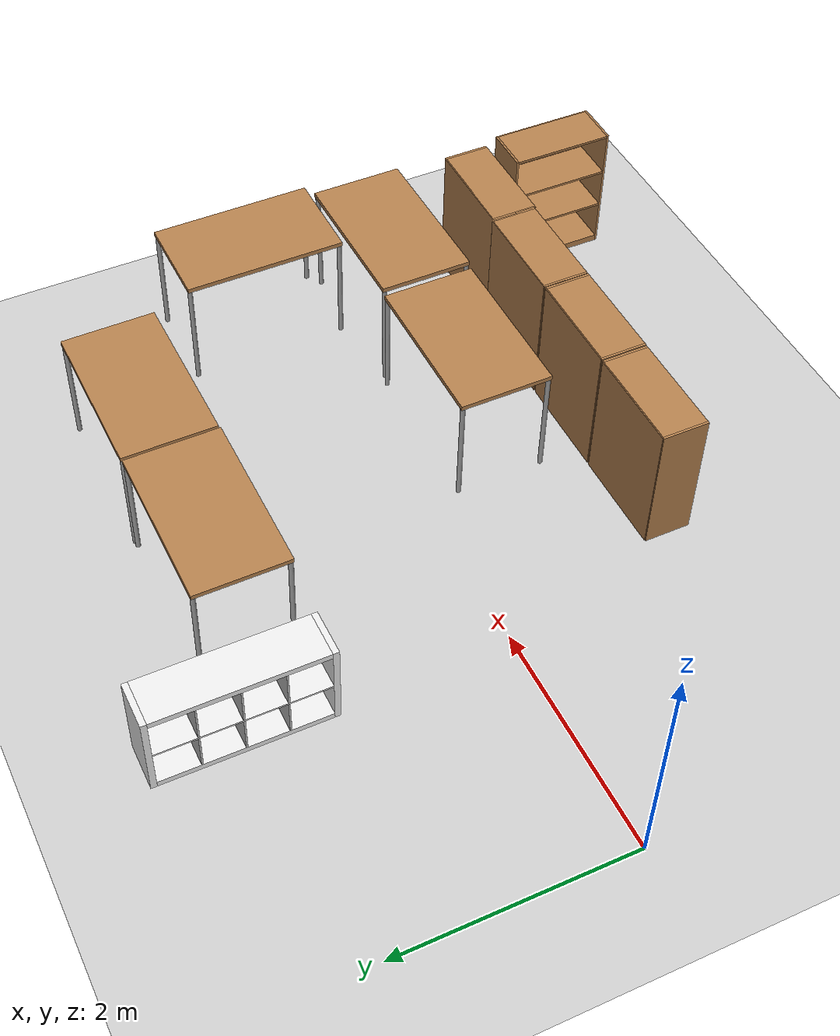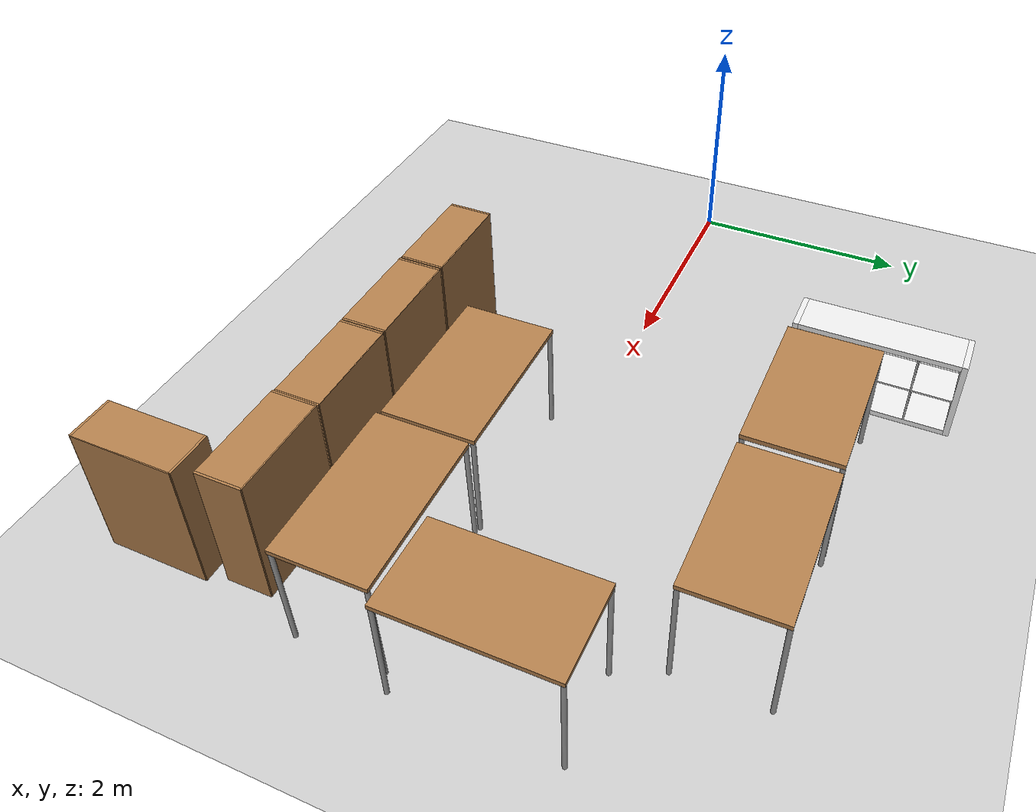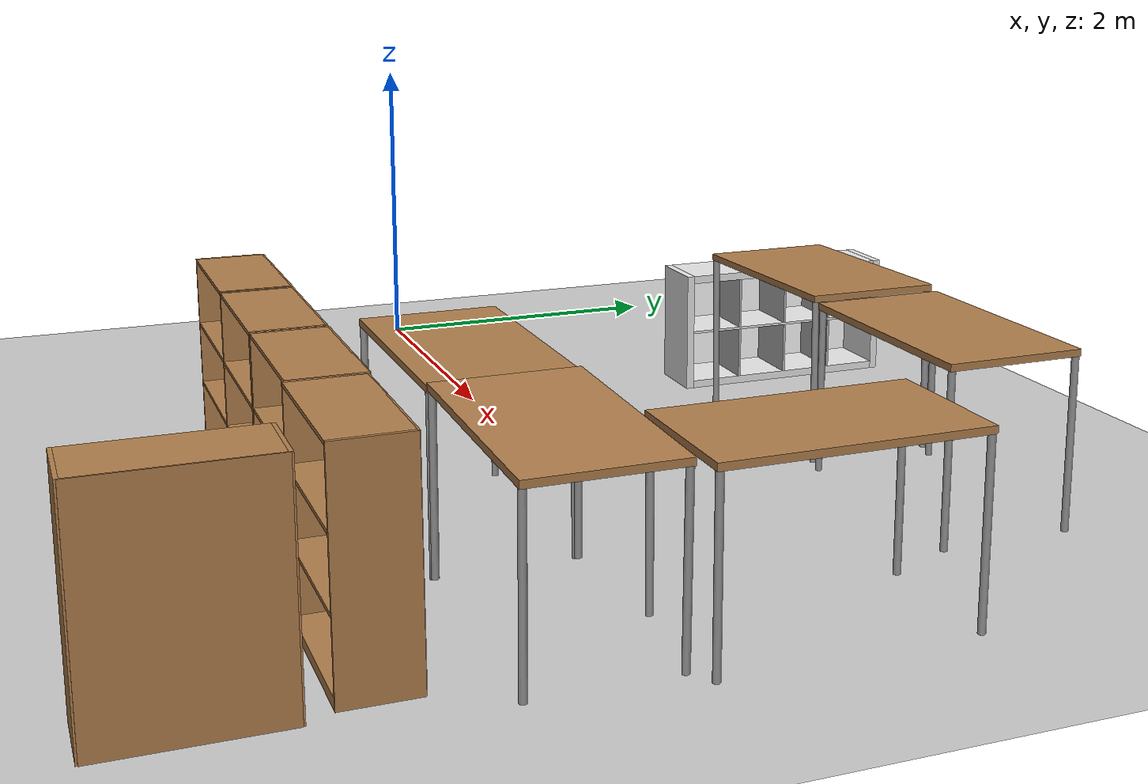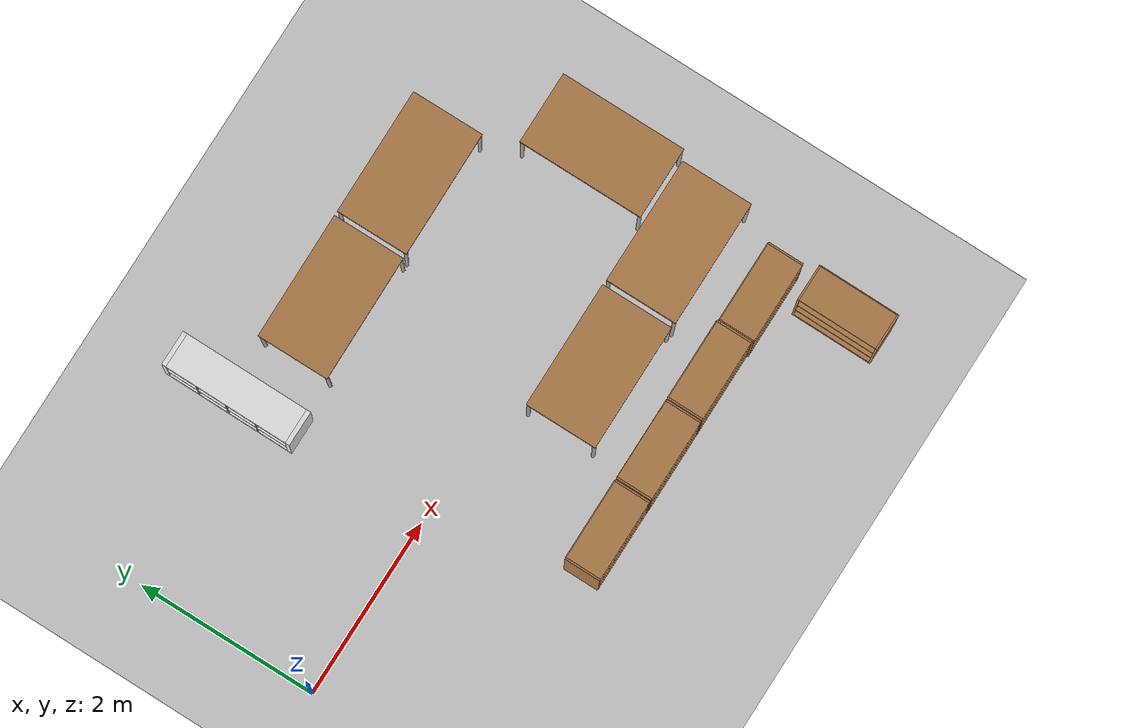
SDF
<sdf version="1.6">
 <world name="default">
  <model name="ground_plane">
   <static>1</static>
   <link name="link">
    <collision name="collision">
     <geometry><plane><normal>0 0 1</normal><size>100 100</size></plane></geometry>
     <surface><friction><ode><mu>100</mu><mu2>50</mu2></ode></friction></surface>
    </collision>
    <visual name="visual">
     <cast_shadows>0</cast_shadows>
     <geometry><plane><normal>0 0 1</normal><size>100 100</size></plane></geometry>
     <material>
      <script><uri>file://media/materials/scripts/gazebo.material</uri><name>Gazebo/Grey</name></script>
     </material>
    </visual>
   </link>
  </model>
  <model name="bookshelf_0">
   <static>1</static>
   <link name="link">
    <inertial><mass>1</mass></inertial>
    <collision name="back">
     <pose>0 0.005 0.6 0 -0 0</pose>
     <geometry><box><size>0.9 0.01 1.2</size></box></geometry>
    </collision>
    <visual name="visual1">
     <pose>0 0.005 0.6 0 -0 0</pose>
     <geometry><box><size>0.9 0.01 1.2</size></box></geometry>
     <material>
      <script><uri>file://media/materials/scripts/gazebo.material</uri><name>Gazebo/Wood</name></script>
     </material>
    </visual>
    <collision name="left_side">
     <pose>0.45 -0.195 0.6 0 -0 0</pose>
     <geometry><box><size>0.02 0.4 1.2</size></box></geometry>
    </collision>
    <visual name="visual2">
     <pose>0.45 -0.195 0.6 0 -0 0</pose>
     <geometry><box><size>0.02 0.4 1.2</size></box></geometry>
     <material>
      <script><uri>file://media/materials/scripts/gazebo.material</uri><name>Gazebo/Wood</name></script>
     </material>
    </visual>
    <collision name="right_side">
     <pose>-0.45 -0.195 0.6 0 -0 0</pose>
     <geometry><box><size>0.02 0.4 1.2</size></box></geometry>
    </collision>
    <visual name="visual3">
     <pose>-0.45 -0.195 0.6 0 -0 0</pose>
     <geometry><box><size>0.02 0.4 1.2</size></box></geometry>
     <material>
      <script><uri>file://media/materials/scripts/gazebo.material</uri><name>Gazebo/Wood</name></script>
     </material>
    </visual>
    <collision name="bottom">
     <pose>0 -0.195 0.03 0 -0 0</pose>
     <geometry><box><size>0.88 0.4 0.06</size></box></geometry>
    </collision>
    <visual name="visual4">
     <pose>0 -0.195 0.03 0 -0 0</pose>
     <geometry><box><size>0.88 0.4 0.06</size></box></geometry>
     <material>
      <script><uri>file://media/materials/scripts/gazebo.material</uri><name>Gazebo/Wood</name></script>
     </material>
    </visual>
    <collision name="top">
     <pose>0 -0.195 1.19 0 -0 0</pose>
     <geometry><box><size>0.88 0.4 0.02</size></box></geometry>
    </collision>
    <visual name="visual5">
     <pose>0 -0.195 1.19 0 -0 0</pose>
     <geometry><box><size>0.88 0.4 0.02</size></box></geometry>
     <material>
      <script><uri>file://media/materials/scripts/gazebo.material</uri><name>Gazebo/Wood</name></script>
     </material>
    </visual>
    <collision name="low_shelf">
     <pose>0 -0.195 0.43 0 -0 0</pose>
     <geometry><box><size>0.88 0.4 0.02</size></box></geometry>
    </collision>
    <visual name="visual6">
     <pose>0 -0.195 0.43 0 -0 0</pose>
     <geometry><box><size>0.88 0.4 0.02</size></box></geometry>
     <material>
      <script><uri>file://media/materials/scripts/gazebo.material</uri><name>Gazebo/Wood</name></script>
     </material>
    </visual>
    <collision name="high_shelf">
     <pose>0 -0.195 0.8 0 -0 0</pose>
     <geometry><box><size>0.88 0.4 0.02</size></box></geometry>
    </collision>
    <visual name="visual7">
     <pose>0 -0.195 0.8 0 -0 0</pose>
     <geometry><box><size>0.88 0.4 0.02</size></box></geometry>
     <material>
      <script><uri>file://media/materials/scripts/gazebo.material</uri><name>Gazebo/Wood</name></script>
     </material>
    </visual>
   </link>
   <pose>5.60698 -1.45081 0 0 -0 0</pose>
  </model>
  <model name="bookshelf_0_clone">
   <static>1</static>
   <link name="link">
    <inertial><mass>1</mass></inertial>
    <collision name="back">
     <pose>0 0.005 0.6 0 -0 0</pose>
     <geometry><box><size>0.9 0.01 1.2</size></box></geometry>
    </collision>
    <visual name="visual1">
     <pose>0 0.005 0.6 0 -0 0</pose>
     <geometry><box><size>0.9 0.01 1.2</size></box></geometry>
     <material>
      <script><uri>file://media/materials/scripts/gazebo.material</uri><name>Gazebo/Wood</name></script>
     </material>
    </visual>
    <collision name="left_side">
     <pose>0.45 -0.195 0.6 0 -0 0</pose>
     <geometry><box><size>0.02 0.4 1.2</size></box></geometry>
    </collision>
    <visual name="visual2">
     <pose>0.45 -0.195 0.6 0 -0 0</pose>
     <geometry><box><size>0.02 0.4 1.2</size></box></geometry>
     <material>
      <script><uri>file://media/materials/scripts/gazebo.material</uri><name>Gazebo/Wood</name></script>
     </material>
    </visual>
    <collision name="right_side">
     <pose>-0.45 -0.195 0.6 0 -0 0</pose>
     <geometry><box><size>0.02 0.4 1.2</size></box></geometry>
    </collision>
    <visual name="visual3">
     <pose>-0.45 -0.195 0.6 0 -0 0</pose>
     <geometry><box><size>0.02 0.4 1.2</size></box></geometry>
     <material>
      <script><uri>file://media/materials/scripts/gazebo.material</uri><name>Gazebo/Wood</name></script>
     </material>
    </visual>
    <collision name="bottom">
     <pose>0 -0.195 0.03 0 -0 0</pose>
     <geometry><box><size>0.88 0.4 0.06</size></box></geometry>
    </collision>
    <visual name="visual4">
     <pose>0 -0.195 0.03 0 -0 0</pose>
     <geometry><box><size>0.88 0.4 0.06</size></box></geometry>
     <material>
      <script><uri>file://media/materials/scripts/gazebo.material</uri><name>Gazebo/Wood</name></script>
     </material>
    </visual>
    <collision name="top">
     <pose>0 -0.195 1.19 0 -0 0</pose>
     <geometry><box><size>0.88 0.4 0.02</size></box></geometry>
    </collision>
    <visual name="visual5">
     <pose>0 -0.195 1.19 0 -0 0</pose>
     <geometry><box><size>0.88 0.4 0.02</size></box></geometry>
     <material>
      <script><uri>file://media/materials/scripts/gazebo.material</uri><name>Gazebo/Wood</name></script>
     </material>
    </visual>
    <collision name="low_shelf">
     <pose>0 -0.195 0.43 0 -0 0</pose>
     <geometry><box><size>0.88 0.4 0.02</size></box></geometry>
    </collision>
    <visual name="visual6">
     <pose>0 -0.195 0.43 0 -0 0</pose>
     <geometry><box><size>0.88 0.4 0.02</size></box></geometry>
     <material>
      <script><uri>file://media/materials/scripts/gazebo.material</uri><name>Gazebo/Wood</name></script>
     </material>
    </visual>
    <collision name="high_shelf">
     <pose>0 -0.195 0.8 0 -0 0</pose>
     <geometry><box><size>0.88 0.4 0.02</size></box></geometry>
    </collision>
    <visual name="visual7">
     <pose>0 -0.195 0.8 0 -0 0</pose>
     <geometry><box><size>0.88 0.4 0.02</size></box></geometry>
     <material>
      <script><uri>file://media/materials/scripts/gazebo.material</uri><name>Gazebo/Wood</name></script>
     </material>
    </visual>
   </link>
   <pose>4.69369 -1.43695 0 0 -0 0</pose>
  </model>
  <model name="bookshelf_0_clone_0">
   <static>1</static>
   <link name="link">
    <inertial><mass>1</mass></inertial>
    <collision name="back">
     <pose>0 0.005 0.6 0 -0 0</pose>
     <geometry><box><size>0.9 0.01 1.2</size></box></geometry>
    </collision>
    <visual name="visual1">
     <pose>0 0.005 0.6 0 -0 0</pose>
     <geometry><box><size>0.9 0.01 1.2</size></box></geometry>
     <material>
      <script><uri>file://media/materials/scripts/gazebo.material</uri><name>Gazebo/Wood</name></script>
     </material>
    </visual>
    <collision name="left_side">
     <pose>0.45 -0.195 0.6 0 -0 0</pose>
     <geometry><box><size>0.02 0.4 1.2</size></box></geometry>
    </collision>
    <visual name="visual2">
     <pose>0.45 -0.195 0.6 0 -0 0</pose>
     <geometry><box><size>0.02 0.4 1.2</size></box></geometry>
     <material>
      <script><uri>file://media/materials/scripts/gazebo.material</uri><name>Gazebo/Wood</name></script>
     </material>
    </visual>
    <collision name="right_side">
     <pose>-0.45 -0.195 0.6 0 -0 0</pose>
     <geometry><box><size>0.02 0.4 1.2</size></box></geometry>
    </collision>
    <visual name="visual3">
     <pose>-0.45 -0.195 0.6 0 -0 0</pose>
     <geometry><box><size>0.02 0.4 1.2</size></box></geometry>
     <material>
      <script><uri>file://media/materials/scripts/gazebo.material</uri><name>Gazebo/Wood</name></script>
     </material>
    </visual>
    <collision name="bottom">
     <pose>0 -0.195 0.03 0 -0 0</pose>
     <geometry><box><size>0.88 0.4 0.06</size></box></geometry>
    </collision>
    <visual name="visual4">
     <pose>0 -0.195 0.03 0 -0 0</pose>
     <geometry><box><size>0.88 0.4 0.06</size></box></geometry>
     <material>
      <script><uri>file://media/materials/scripts/gazebo.material</uri><name>Gazebo/Wood</name></script>
     </material>
    </visual>
    <collision name="top">
     <pose>0 -0.195 1.19 0 -0 0</pose>
     <geometry><box><size>0.88 0.4 0.02</size></box></geometry>
    </collision>
    <visual name="visual5">
     <pose>0 -0.195 1.19 0 -0 0</pose>
     <geometry><box><size>0.88 0.4 0.02</size></box></geometry>
     <material>
      <script><uri>file://media/materials/scripts/gazebo.material</uri><name>Gazebo/Wood</name></script>
     </material>
    </visual>
    <collision name="low_shelf">
     <pose>0 -0.195 0.43 0 -0 0</pose>
     <geometry><box><size>0.88 0.4 0.02</size></box></geometry>
    </collision>
    <visual name="visual6">
     <pose>0 -0.195 0.43 0 -0 0</pose>
     <geometry><box><size>0.88 0.4 0.02</size></box></geometry>
     <material>
      <script><uri>file://media/materials/scripts/gazebo.material</uri><name>Gazebo/Wood</name></script>
     </material>
    </visual>
    <collision name="high_shelf">
     <pose>0 -0.195 0.8 0 -0 0</pose>
     <geometry><box><size>0.88 0.4 0.02</size></box></geometry>
    </collision>
    <visual name="visual7">
     <pose>0 -0.195 0.8 0 -0 0</pose>
     <geometry><box><size>0.88 0.4 0.02</size></box></geometry>
     <material>
      <script><uri>file://media/materials/scripts/gazebo.material</uri><name>Gazebo/Wood</name></script>
     </material>
    </visual>
   </link>
   <pose>3.76739 -1.438 0 0 -0 0</pose>
  </model>
  <model name="bookshelf_0_clone_1">
   <static>1</static>
   <link name="link">
    <inertial><mass>1</mass></inertial>
    <collision name="back">
     <pose>0 0.005 0.6 0 -0 0</pose>
     <geometry><box><size>0.9 0.01 1.2</size></box></geometry>
    </collision>
    <visual name="visual1">
     <pose>0 0.005 0.6 0 -0 0</pose>
     <geometry><box><size>0.9 0.01 1.2</size></box></geometry>
     <material>
      <script><uri>file://media/materials/scripts/gazebo.material</uri><name>Gazebo/Wood</name></script>
     </material>
    </visual>
    <collision name="left_side">
     <pose>0.45 -0.195 0.6 0 -0 0</pose>
     <geometry><box><size>0.02 0.4 1.2</size></box></geometry>
    </collision>
    <visual name="visual2">
     <pose>0.45 -0.195 0.6 0 -0 0</pose>
     <geometry><box><size>0.02 0.4 1.2</size></box></geometry>
     <material>
      <script><uri>file://media/materials/scripts/gazebo.material</uri><name>Gazebo/Wood</name></script>
     </material>
    </visual>
    <collision name="right_side">
     <pose>-0.45 -0.195 0.6 0 -0 0</pose>
     <geometry><box><size>0.02 0.4 1.2</size></box></geometry>
    </collision>
    <visual name="visual3">
     <pose>-0.45 -0.195 0.6 0 -0 0</pose>
     <geometry><box><size>0.02 0.4 1.2</size></box></geometry>
     <material>
      <script><uri>file://media/materials/scripts/gazebo.material</uri><name>Gazebo/Wood</name></script>
     </material>
    </visual>
    <collision name="bottom">
     <pose>0 -0.195 0.03 0 -0 0</pose>
     <geometry><box><size>0.88 0.4 0.06</size></box></geometry>
    </collision>
    <visual name="visual4">
     <pose>0 -0.195 0.03 0 -0 0</pose>
     <geometry><box><size>0.88 0.4 0.06</size></box></geometry>
     <material>
      <script><uri>file://media/materials/scripts/gazebo.material</uri><name>Gazebo/Wood</name></script>
     </material>
    </visual>
    <collision name="top">
     <pose>0 -0.195 1.19 0 -0 0</pose>
     <geometry><box><size>0.88 0.4 0.02</size></box></geometry>
    </collision>
    <visual name="visual5">
     <pose>0 -0.195 1.19 0 -0 0</pose>
     <geometry><box><size>0.88 0.4 0.02</size></box></geometry>
     <material>
      <script><uri>file://media/materials/scripts/gazebo.material</uri><name>Gazebo/Wood</name></script>
     </material>
    </visual>
    <collision name="low_shelf">
     <pose>0 -0.195 0.43 0 -0 0</pose>
     <geometry><box><size>0.88 0.4 0.02</size></box></geometry>
    </collision>
    <visual name="visual6">
     <pose>0 -0.195 0.43 0 -0 0</pose>
     <geometry><box><size>0.88 0.4 0.02</size></box></geometry>
     <material>
      <script><uri>file://media/materials/scripts/gazebo.material</uri><name>Gazebo/Wood</name></script>
     </material>
    </visual>
    <collision name="high_shelf">
     <pose>0 -0.195 0.8 0 -0 0</pose>
     <geometry><box><size>0.88 0.4 0.02</size></box></geometry>
    </collision>
    <visual name="visual7">
     <pose>0 -0.195 0.8 0 -0 0</pose>
     <geometry><box><size>0.88 0.4 0.02</size></box></geometry>
     <material>
      <script><uri>file://media/materials/scripts/gazebo.material</uri><name>Gazebo/Wood</name></script>
     </material>
    </visual>
   </link>
   <pose>2.83762 -1.43529 0 0 -0 0</pose>
  </model>
  <model name="bookshelf_sidepose_clone_4">
   <link name="link">
    <pose>0.214811 -0.123316 0 0 0 -1.57547</pose>
    <inertial><mass>1</mass></inertial>
    <visual name="visual1">
     <pose>0 0.005 0.6 0 -0 0</pose>
     <geometry><box><size>0.9 0.01 1.2</size></box></geometry>
     <material>
      <script><uri>file://media/materials/scripts/gazebo.material</uri><name>Gazebo/Wood</name></script>
      <ambient>1 1 1 1</ambient>
      <diffuse>1 1 1 1</diffuse>
      <specular>0.2 0.2 0.2 1</specular>
      <emissive>0 0 0 1</emissive>
     </material>
    </visual>
    <visual name="visual2">
     <pose>0.45 -0.195 0.6 0 -0 0</pose>
     <geometry><box><size>0.02 0.4 1.2</size></box></geometry>
     <material>
      <script><uri>file://media/materials/scripts/gazebo.material</uri><name>Gazebo/Wood</name></script>
      <ambient>1 1 1 1</ambient>
      <diffuse>1 1 1 1</diffuse>
      <specular>0.2 0.2 0.2 1</specular>
      <emissive>0 0 0 1</emissive>
     </material>
    </visual>
    <visual name="visual3">
     <pose>-0.45 -0.195 0.6 0 -0 0</pose>
     <geometry><box><size>0.02 0.4 1.2</size></box></geometry>
     <material>
      <script><uri>file://media/materials/scripts/gazebo.material</uri><name>Gazebo/Wood</name></script>
      <ambient>1 1 1 1</ambient>
      <diffuse>1 1 1 1</diffuse>
      <specular>0.2 0.2 0.2 1</specular>
      <emissive>0 0 0 1</emissive>
     </material>
    </visual>
    <visual name="visual4">
     <pose>0 -0.195 0.03 0 -0 0</pose>
     <geometry><box><size>0.88 0.4 0.06</size></box></geometry>
     <material>
      <script><uri>file://media/materials/scripts/gazebo.material</uri><name>Gazebo/Wood</name></script>
      <ambient>1 1 1 1</ambient>
      <diffuse>1 1 1 1</diffuse>
      <specular>0.2 0.2 0.2 1</specular>
      <emissive>0 0 0 1</emissive>
     </material>
    </visual>
    <visual name="visual6">
     <pose>0 -0.195 0.43 0 -0 0</pose>
     <geometry><box><size>0.88 0.4 0.02</size></box></geometry>
     <material>
      <script><uri>file://media/materials/scripts/gazebo.material</uri><name>Gazebo/Wood</name></script>
      <ambient>1 1 1 1</ambient>
      <diffuse>1 1 1 1</diffuse>
      <specular>0.2 0.2 0.2 1</specular>
      <emissive>0 0 0 1</emissive>
     </material>
    </visual>
    <visual name="visual5">
     <pose>0 -0.195 1.19 0 -0 0</pose>
     <geometry><box><size>0.88 0.4 0.02</size></box></geometry>
     <material>
      <script><uri>file://media/materials/scripts/gazebo.material</uri><name>Gazebo/Wood</name></script>
      <ambient>1 1 1 1</ambient>
      <diffuse>1 1 1 1</diffuse>
      <specular>0.2 0.2 0.2 1</specular>
      <emissive>0 0 0 1</emissive>
     </material>
    </visual>
    <visual name="visual7">
     <pose>0 -0.195 0.8 0 -0 0</pose>
     <geometry><box><size>0.88 0.4 0.02</size></box></geometry>
     <material>
      <script><uri>file://media/materials/scripts/gazebo.material</uri><name>Gazebo/Wood</name></script>
      <ambient>1 1 1 1</ambient>
      <diffuse>1 1 1 1</diffuse>
      <specular>0.2 0.2 0.2 1</specular>
      <emissive>0 0 0 1</emissive>
     </material>
    </visual>
    <collision name="back">
     <pose>0 0.005 0.6 0 -0 0</pose>
     <geometry><box><size>0.9 0.01 1.2</size></box></geometry>
     <surface>
      <friction>
       <ode><mu>1</mu><mu2>1</mu2><fdir1>0 0 0</fdir1><slip1>0</slip1><slip2>0</slip2></ode>
       <torsional>
        <coefficient>1</coefficient>
        <patch_radius>0</patch_radius>
        <surface_radius>0</surface_radius>
        <use_patch_radius>1</use_patch_radius>
        <ode><slip>0</slip></ode>
       </torsional>
      </friction>
      <bounce><restitution_coefficient>0</restitution_coefficient><threshold>1e+06</threshold></bounce>
      <contact>
       <collide_without_contact>0</collide_without_contact>
       <collide_without_contact_bitmask>1</collide_without_contact_bitmask>
       <collide_bitmask>1</collide_bitmask>
       <ode>
        <soft_cfm>0</soft_cfm>
        <soft_erp>0.2</soft_erp>
        <kp>1e+13</kp>
        <kd>1</kd>
        <max_vel>0.01</max_vel>
        <min_depth>0</min_depth>
       </ode>
       <bullet>
        <split_impulse>1</split_impulse>
        <split_impulse_penetration_threshold>-0.01</split_impulse_penetration_threshold>
        <soft_cfm>0</soft_cfm>
        <soft_erp>0.2</soft_erp>
        <kp>1e+13</kp>
        <kd>1</kd>
       </bullet>
      </contact>
     </surface>
    </collision>
    <collision name="left_side">
     <pose>0.45 -0.195 0.6 0 -0 0</pose>
     <geometry><box><size>0.02 0.4 1.2</size></box></geometry>
     <surface>
      <friction>
       <ode><mu>1</mu><mu2>1</mu2><fdir1>0 0 0</fdir1><slip1>0</slip1><slip2>0</slip2></ode>
       <torsional>
        <coefficient>1</coefficient>
        <patch_radius>0</patch_radius>
        <surface_radius>0</surface_radius>
        <use_patch_radius>1</use_patch_radius>
        <ode><slip>0</slip></ode>
       </torsional>
      </friction>
      <bounce><restitution_coefficient>0</restitution_coefficient><threshold>1e+06</threshold></bounce>
      <contact>
       <collide_without_contact>0</collide_without_contact>
       <collide_without_contact_bitmask>1</collide_without_contact_bitmask>
       <collide_bitmask>1</collide_bitmask>
       <ode>
        <soft_cfm>0</soft_cfm>
        <soft_erp>0.2</soft_erp>
        <kp>1e+13</kp>
        <kd>1</kd>
        <max_vel>0.01</max_vel>
        <min_depth>0</min_depth>
       </ode>
       <bullet>
        <split_impulse>1</split_impulse>
        <split_impulse_penetration_threshold>-0.01</split_impulse_penetration_threshold>
        <soft_cfm>0</soft_cfm>
        <soft_erp>0.2</soft_erp>
        <kp>1e+13</kp>
        <kd>1</kd>
       </bullet>
      </contact>
     </surface>
    </collision>
    <collision name="right_side">
     <pose>-0.45 -0.195 0.6 0 -0 0</pose>
     <geometry><box><size>0.02 0.4 1.2</size></box></geometry>
     <surface>
      <friction>
       <ode><mu>1</mu><mu2>1</mu2><fdir1>0 0 0</fdir1><slip1>0</slip1><slip2>0</slip2></ode>
       <torsional>
        <coefficient>1</coefficient>
        <patch_radius>0</patch_radius>
        <surface_radius>0</surface_radius>
        <use_patch_radius>1</use_patch_radius>
        <ode><slip>0</slip></ode>
       </torsional>
      </friction>
      <bounce><restitution_coefficient>0</restitution_coefficient><threshold>1e+06</threshold></bounce>
      <contact>
       <collide_without_contact>0</collide_without_contact>
       <collide_without_contact_bitmask>1</collide_without_contact_bitmask>
       <collide_bitmask>1</collide_bitmask>
       <ode>
        <soft_cfm>0</soft_cfm>
        <soft_erp>0.2</soft_erp>
        <kp>1e+13</kp>
        <kd>1</kd>
        <max_vel>0.01</max_vel>
        <min_depth>0</min_depth>
       </ode>
       <bullet>
        <split_impulse>1</split_impulse>
        <split_impulse_penetration_threshold>-0.01</split_impulse_penetration_threshold>
        <soft_cfm>0</soft_cfm>
        <soft_erp>0.2</soft_erp>
        <kp>1e+13</kp>
        <kd>1</kd>
       </bullet>
      </contact>
     </surface>
    </collision>
    <collision name="bottom">
     <pose>0 -0.195 0.03 0 -0 0</pose>
     <geometry><box><size>0.88 0.4 0.06</size></box></geometry>
     <surface>
      <friction>
       <ode><mu>1</mu><mu2>1</mu2><fdir1>0 0 0</fdir1><slip1>0</slip1><slip2>0</slip2></ode>
       <torsional>
        <coefficient>1</coefficient>
        <patch_radius>0</patch_radius>
        <surface_radius>0</surface_radius>
        <use_patch_radius>1</use_patch_radius>
        <ode><slip>0</slip></ode>
       </torsional>
      </friction>
      <bounce><restitution_coefficient>0</restitution_coefficient><threshold>1e+06</threshold></bounce>
      <contact>
       <collide_without_contact>0</collide_without_contact>
       <collide_without_contact_bitmask>1</collide_without_contact_bitmask>
       <collide_bitmask>1</collide_bitmask>
       <ode>
        <soft_cfm>0</soft_cfm>
        <soft_erp>0.2</soft_erp>
        <kp>1e+13</kp>
        <kd>1</kd>
        <max_vel>0.01</max_vel>
        <min_depth>0</min_depth>
       </ode>
       <bullet>
        <split_impulse>1</split_impulse>
        <split_impulse_penetration_threshold>-0.01</split_impulse_penetration_threshold>
        <soft_cfm>0</soft_cfm>
        <soft_erp>0.2</soft_erp>
        <kp>1e+13</kp>
        <kd>1</kd>
       </bullet>
      </contact>
     </surface>
    </collision>
    <collision name="low_shelf">
     <pose>0 -0.195 0.43 0 -0 0</pose>
     <geometry><box><size>0.88 0.4 0.02</size></box></geometry>
     <surface>
      <friction>
       <ode><mu>1</mu><mu2>1</mu2><fdir1>0 0 0</fdir1><slip1>0</slip1><slip2>0</slip2></ode>
       <torsional>
        <coefficient>1</coefficient>
        <patch_radius>0</patch_radius>
        <surface_radius>0</surface_radius>
        <use_patch_radius>1</use_patch_radius>
        <ode><slip>0</slip></ode>
       </torsional>
      </friction>
      <bounce><restitution_coefficient>0</restitution_coefficient><threshold>1e+06</threshold></bounce>
      <contact>
       <collide_without_contact>0</collide_without_contact>
       <collide_without_contact_bitmask>1</collide_without_contact_bitmask>
       <collide_bitmask>1</collide_bitmask>
       <ode>
        <soft_cfm>0</soft_cfm>
        <soft_erp>0.2</soft_erp>
        <kp>1e+13</kp>
        <kd>1</kd>
        <max_vel>0.01</max_vel>
        <min_depth>0</min_depth>
       </ode>
       <bullet>
        <split_impulse>1</split_impulse>
        <split_impulse_penetration_threshold>-0.01</split_impulse_penetration_threshold>
        <soft_cfm>0</soft_cfm>
        <soft_erp>0.2</soft_erp>
        <kp>1e+13</kp>
        <kd>1</kd>
       </bullet>
      </contact>
     </surface>
    </collision>
    <collision name="top">
     <pose>0 -0.195 1.19 0 -0 0</pose>
     <geometry><box><size>0.88 0.4 0.02</size></box></geometry>
     <surface>
      <friction>
       <ode><mu>1</mu><mu2>1</mu2><fdir1>0 0 0</fdir1><slip1>0</slip1><slip2>0</slip2></ode>
       <torsional>
        <coefficient>1</coefficient>
        <patch_radius>0</patch_radius>
        <surface_radius>0</surface_radius>
        <use_patch_radius>1</use_patch_radius>
        <ode><slip>0</slip></ode>
       </torsional>
      </friction>
      <bounce><restitution_coefficient>0</restitution_coefficient><threshold>1e+06</threshold></bounce>
      <contact>
       <collide_without_contact>0</collide_without_contact>
       <collide_without_contact_bitmask>1</collide_without_contact_bitmask>
       <collide_bitmask>1</collide_bitmask>
       <ode>
        <soft_cfm>0</soft_cfm>
        <soft_erp>0.2</soft_erp>
        <kp>1e+13</kp>
        <kd>1</kd>
        <max_vel>0.01</max_vel>
        <min_depth>0</min_depth>
       </ode>
       <bullet>
        <split_impulse>1</split_impulse>
        <split_impulse_penetration_threshold>-0.01</split_impulse_penetration_threshold>
        <soft_cfm>0</soft_cfm>
        <soft_erp>0.2</soft_erp>
        <kp>1e+13</kp>
        <kd>1</kd>
       </bullet>
      </contact>
     </surface>
    </collision>
    <collision name="high_shelf">
     <pose>0 -0.195 0.8 0 -0 0</pose>
     <geometry><box><size>0.88 0.4 0.02</size></box></geometry>
     <surface>
      <friction>
       <ode><mu>1</mu><mu2>1</mu2><fdir1>0 0 0</fdir1><slip1>0</slip1><slip2>0</slip2></ode>
       <torsional>
        <coefficient>1</coefficient>
        <patch_radius>0</patch_radius>
        <surface_radius>0</surface_radius>
        <use_patch_radius>1</use_patch_radius>
        <ode><slip>0</slip></ode>
       </torsional>
      </friction>
      <bounce><restitution_coefficient>0</restitution_coefficient><threshold>1e+06</threshold></bounce>
      <contact>
       <collide_without_contact>0</collide_without_contact>
       <collide_without_contact_bitmask>1</collide_without_contact_bitmask>
       <collide_bitmask>1</collide_bitmask>
       <ode>
        <soft_cfm>0</soft_cfm>
        <soft_erp>0.2</soft_erp>
        <kp>1e+13</kp>
        <kd>1</kd>
        <max_vel>0.01</max_vel>
        <min_depth>0</min_depth>
       </ode>
       <bullet>
        <split_impulse>1</split_impulse>
        <split_impulse_penetration_threshold>-0.01</split_impulse_penetration_threshold>
        <soft_cfm>0</soft_cfm>
        <soft_erp>0.2</soft_erp>
        <kp>1e+13</kp>
        <kd>1</kd>
       </bullet>
      </contact>
     </surface>
    </collision>
   </link>
   <static>1</static>
   <pose>5.91709 -2.32084 0 0 -0 0</pose>
  </model>
  <model name="table_0_clone_clone_0">
   <static>0</static>
   <link name="link">
    <collision name="surface">
     <pose>0 0 1 0 -0 0</pose>
     <geometry><box><size>1.5 0.8 0.03</size></box></geometry>
     <surface><friction><ode><mu>0.6</mu><mu2>0.6</mu2></ode></friction></surface>
    </collision>
    <visual name="visual1">
     <pose>0 0 1 0 -0 0</pose>
     <geometry><box><size>1.4 0.8 0.04</size></box></geometry>
     <material>
      <script><uri>file://media/materials/scripts/gazebo.material</uri><name>Gazebo/Wood</name></script>
     </material>
    </visual>
    <collision name="front_left_leg">
     <pose>0.68 0.38 0.5 0 -0 0</pose>
     <geometry><cylinder><radius>0.02</radius><length>1</length></cylinder></geometry>
    </collision>
    <visual name="front_left_leg">
     <pose>0.68 0.38 0.5 0 -0 0</pose>
     <geometry><cylinder><radius>0.02</radius><length>1</length></cylinder></geometry>
     <material>
      <script><uri>file://media/materials/scripts/gazebo.material</uri><name>Gazebo/Grey</name></script>
     </material>
    </visual>
    <collision name="front_right_leg">
     <pose>0.68 -0.38 0.5 0 -0 0</pose>
     <geometry><cylinder><radius>0.02</radius><length>1</length></cylinder></geometry>
    </collision>
    <visual name="front_right_leg">
     <pose>0.68 -0.38 0.5 0 -0 0</pose>
     <geometry><cylinder><radius>0.02</radius><length>1</length></cylinder></geometry>
     <material>
      <script><uri>file://media/materials/scripts/gazebo.material</uri><name>Gazebo/Grey</name></script>
     </material>
    </visual>
    <collision name="back_right_leg">
     <pose>-0.68 -0.38 0.5 0 -0 0</pose>
     <geometry><cylinder><radius>0.02</radius><length>1</length></cylinder></geometry>
    </collision>
    <visual name="back_right_leg">
     <pose>-0.68 -0.38 0.5 0 -0 0</pose>
     <geometry><cylinder><radius>0.02</radius><length>1</length></cylinder></geometry>
     <material>
      <script><uri>file://media/materials/scripts/gazebo.material</uri><name>Gazebo/Grey</name></script>
     </material>
    </visual>
    <collision name="back_left_leg">
     <pose>-0.68 0.38 0.5 0 -0 0</pose>
     <geometry><cylinder><radius>0.02</radius><length>1</length></cylinder></geometry>
    </collision>
    <visual name="back_left_leg">
     <pose>-0.68 0.38 0.5 0 -0 0</pose>
     <geometry><cylinder><radius>0.02</radius><length>1</length></cylinder></geometry>
     <material>
      <script><uri>file://media/materials/scripts/gazebo.material</uri><name>Gazebo/Grey</name></script>
     </material>
    </visual>
    <inertial>
     <inertia><ixx>1</ixx><ixy>0</ixy><ixz>0</ixz><iyy>1</iyy><iyz>0</iyz><izz>1</izz></inertia>
     <mass>1</mass>
    </inertial>
   </link>
   <pose>4.16481 -0.692604 0 0 -0 0.001679</pose>
  </model>
  <model name="table_0_clone_clone_0_clone">
   <static>0</static>
   <link name="link">
    <collision name="surface">
     <pose>0 0 1 0 -0 0</pose>
     <geometry><box><size>1.5 0.8 0.03</size></box></geometry>
     <surface><friction><ode><mu>0.6</mu><mu2>0.6</mu2></ode></friction></surface>
    </collision>
    <visual name="visual1">
     <pose>0 0 1 0 -0 0</pose>
     <geometry><box><size>1.4 0.8 0.04</size></box></geometry>
     <material>
      <script><uri>file://media/materials/scripts/gazebo.material</uri><name>Gazebo/Wood</name></script>
     </material>
    </visual>
    <collision name="front_left_leg">
     <pose>0.68 0.38 0.5 0 -0 0</pose>
     <geometry><cylinder><radius>0.02</radius><length>1</length></cylinder></geometry>
    </collision>
    <visual name="front_left_leg">
     <pose>0.68 0.38 0.5 0 -0 0</pose>
     <geometry><cylinder><radius>0.02</radius><length>1</length></cylinder></geometry>
     <material>
      <script><uri>file://media/materials/scripts/gazebo.material</uri><name>Gazebo/Grey</name></script>
     </material>
    </visual>
    <collision name="front_right_leg">
     <pose>0.68 -0.38 0.5 0 -0 0</pose>
     <geometry><cylinder><radius>0.02</radius><length>1</length></cylinder></geometry>
    </collision>
    <visual name="front_right_leg">
     <pose>0.68 -0.38 0.5 0 -0 0</pose>
     <geometry><cylinder><radius>0.02</radius><length>1</length></cylinder></geometry>
     <material>
      <script><uri>file://media/materials/scripts/gazebo.material</uri><name>Gazebo/Grey</name></script>
     </material>
    </visual>
    <collision name="back_right_leg">
     <pose>-0.68 -0.38 0.5 0 -0 0</pose>
     <geometry><cylinder><radius>0.02</radius><length>1</length></cylinder></geometry>
    </collision>
    <visual name="back_right_leg">
     <pose>-0.68 -0.38 0.5 0 -0 0</pose>
     <geometry><cylinder><radius>0.02</radius><length>1</length></cylinder></geometry>
     <material>
      <script><uri>file://media/materials/scripts/gazebo.material</uri><name>Gazebo/Grey</name></script>
     </material>
    </visual>
    <collision name="back_left_leg">
     <pose>-0.68 0.38 0.5 0 -0 0</pose>
     <geometry><cylinder><radius>0.02</radius><length>1</length></cylinder></geometry>
    </collision>
    <visual name="back_left_leg">
     <pose>-0.68 0.38 0.5 0 -0 0</pose>
     <geometry><cylinder><radius>0.02</radius><length>1</length></cylinder></geometry>
     <material>
      <script><uri>file://media/materials/scripts/gazebo.material</uri><name>Gazebo/Grey</name></script>
     </material>
    </visual>
    <inertial>
     <inertia><ixx>1</ixx><ixy>0</ixy><ixz>0</ixz><iyy>1</iyy><iyz>0</iyz><izz>1</izz></inertia>
     <mass>1</mass>
    </inertial>
   </link>
   <pose>5.59405 -0.701116 0.014745 0 0.021584 0.001679</pose>
  </model>
  <model name="table_vert_0_clone_clone_0">
   <link name="link">
    <pose>0 0 0 0 0 -1.56614</pose>
    <inertial>
     <inertia><ixx>1</ixx><ixy>0</ixy><ixz>0</ixz><iyy>1</iyy><iyz>0</iyz><izz>1</izz></inertia>
     <mass>1</mass>
    </inertial>
    <visual name="visual1">
     <pose>0 0 1 0 -0 0</pose>
     <geometry><box><size>1.4 0.8 0.04</size></box></geometry>
     <material>
      <script><uri>file://media/materials/scripts/gazebo.material</uri><name>Gazebo/Wood</name></script>
      <ambient>1 1 1 1</ambient>
      <diffuse>1 1 1 1</diffuse>
      <specular>0.2 0.2 0.2 1</specular>
      <emissive>0 0 0 1</emissive>
     </material>
    </visual>
    <visual name="front_left_leg">
     <pose>0.68 0.38 0.5 0 -0 0</pose>
     <geometry><cylinder><radius>0.02</radius><length>1</length></cylinder></geometry>
     <material>
      <script><uri>file://media/materials/scripts/gazebo.material</uri><name>Gazebo/Grey</name></script>
      <ambient>0.3 0.3 0.3 1</ambient>
      <diffuse>0.7 0.7 0.7 1</diffuse>
      <specular>0.01 0.01 0.01 1</specular>
      <emissive>0 0 0 1</emissive>
     </material>
    </visual>
    <visual name="front_right_leg">
     <pose>0.68 -0.38 0.5 0 -0 0</pose>
     <geometry><cylinder><radius>0.02</radius><length>1</length></cylinder></geometry>
     <material>
      <script><uri>file://media/materials/scripts/gazebo.material</uri><name>Gazebo/Grey</name></script>
      <ambient>0.3 0.3 0.3 1</ambient>
      <diffuse>0.7 0.7 0.7 1</diffuse>
      <specular>0.01 0.01 0.01 1</specular>
      <emissive>0 0 0 1</emissive>
     </material>
    </visual>
    <visual name="back_right_leg">
     <pose>-0.68 -0.38 0.5 0 -0 0</pose>
     <geometry><cylinder><radius>0.02</radius><length>1</length></cylinder></geometry>
     <material>
      <script><uri>file://media/materials/scripts/gazebo.material</uri><name>Gazebo/Grey</name></script>
      <ambient>0.3 0.3 0.3 1</ambient>
      <diffuse>0.7 0.7 0.7 1</diffuse>
      <specular>0.01 0.01 0.01 1</specular>
      <emissive>0 0 0 1</emissive>
     </material>
    </visual>
    <visual name="back_left_leg">
     <pose>-0.68 0.38 0.5 0 -0 0</pose>
     <geometry><cylinder><radius>0.02</radius><length>1</length></cylinder></geometry>
     <material>
      <script><uri>file://media/materials/scripts/gazebo.material</uri><name>Gazebo/Grey</name></script>
      <ambient>0.3 0.3 0.3 1</ambient>
      <diffuse>0.7 0.7 0.7 1</diffuse>
      <specular>0.01 0.01 0.01 1</specular>
      <emissive>0 0 0 1</emissive>
     </material>
    </visual>
    <collision name="surface">
     <pose>0 0 1 0 -0 0</pose>
     <geometry><box><size>1.5 0.8 0.03</size></box></geometry>
     <surface>
      <friction>
       <ode><mu>0.6</mu><mu2>0.6</mu2><fdir1>0 0 0</fdir1><slip1>0</slip1><slip2>0</slip2></ode>
       <torsional>
        <coefficient>1</coefficient>
        <patch_radius>0</patch_radius>
        <surface_radius>0</surface_radius>
        <use_patch_radius>1</use_patch_radius>
        <ode><slip>0</slip></ode>
       </torsional>
      </friction>
      <bounce><restitution_coefficient>0</restitution_coefficient><threshold>1e+06</threshold></bounce>
      <contact>
       <collide_without_contact>0</collide_without_contact>
       <collide_without_contact_bitmask>1</collide_without_contact_bitmask>
       <collide_bitmask>1</collide_bitmask>
       <ode>
        <soft_cfm>0</soft_cfm>
        <soft_erp>0.2</soft_erp>
        <kp>1e+13</kp>
        <kd>1</kd>
        <max_vel>0.01</max_vel>
        <min_depth>0</min_depth>
       </ode>
       <bullet>
        <split_impulse>1</split_impulse>
        <split_impulse_penetration_threshold>-0.01</split_impulse_penetration_threshold>
        <soft_cfm>0</soft_cfm>
        <soft_erp>0.2</soft_erp>
        <kp>1e+13</kp>
        <kd>1</kd>
       </bullet>
      </contact>
     </surface>
    </collision>
    <collision name="front_left_leg">
     <pose>0.68 0.38 0.5 0 -0 0</pose>
     <geometry><cylinder><radius>0.02</radius><length>1</length></cylinder></geometry>
     <surface>
      <friction>
       <ode><mu>1</mu><mu2>1</mu2><fdir1>0 0 0</fdir1><slip1>0</slip1><slip2>0</slip2></ode>
       <torsional>
        <coefficient>1</coefficient>
        <patch_radius>0</patch_radius>
        <surface_radius>0</surface_radius>
        <use_patch_radius>1</use_patch_radius>
        <ode><slip>0</slip></ode>
       </torsional>
      </friction>
      <bounce><restitution_coefficient>0</restitution_coefficient><threshold>1e+06</threshold></bounce>
      <contact>
       <collide_without_contact>0</collide_without_contact>
       <collide_without_contact_bitmask>1</collide_without_contact_bitmask>
       <collide_bitmask>1</collide_bitmask>
       <ode>
        <soft_cfm>0</soft_cfm>
        <soft_erp>0.2</soft_erp>
        <kp>1e+13</kp>
        <kd>1</kd>
        <max_vel>0.01</max_vel>
        <min_depth>0</min_depth>
       </ode>
       <bullet>
        <split_impulse>1</split_impulse>
        <split_impulse_penetration_threshold>-0.01</split_impulse_penetration_threshold>
        <soft_cfm>0</soft_cfm>
        <soft_erp>0.2</soft_erp>
        <kp>1e+13</kp>
        <kd>1</kd>
       </bullet>
      </contact>
     </surface>
    </collision>
    <collision name="front_right_leg">
     <pose>0.68 -0.38 0.5 0 -0 0</pose>
     <geometry><cylinder><radius>0.02</radius><length>1</length></cylinder></geometry>
     <surface>
      <friction>
       <ode><mu>1</mu><mu2>1</mu2><fdir1>0 0 0</fdir1><slip1>0</slip1><slip2>0</slip2></ode>
       <torsional>
        <coefficient>1</coefficient>
        <patch_radius>0</patch_radius>
        <surface_radius>0</surface_radius>
        <use_patch_radius>1</use_patch_radius>
        <ode><slip>0</slip></ode>
       </torsional>
      </friction>
      <bounce><restitution_coefficient>0</restitution_coefficient><threshold>1e+06</threshold></bounce>
      <contact>
       <collide_without_contact>0</collide_without_contact>
       <collide_without_contact_bitmask>1</collide_without_contact_bitmask>
       <collide_bitmask>1</collide_bitmask>
       <ode>
        <soft_cfm>0</soft_cfm>
        <soft_erp>0.2</soft_erp>
        <kp>1e+13</kp>
        <kd>1</kd>
        <max_vel>0.01</max_vel>
        <min_depth>0</min_depth>
       </ode>
       <bullet>
        <split_impulse>1</split_impulse>
        <split_impulse_penetration_threshold>-0.01</split_impulse_penetration_threshold>
        <soft_cfm>0</soft_cfm>
        <soft_erp>0.2</soft_erp>
        <kp>1e+13</kp>
        <kd>1</kd>
       </bullet>
      </contact>
     </surface>
    </collision>
    <collision name="back_right_leg">
     <pose>-0.68 -0.38 0.5 0 -0 0</pose>
     <geometry><cylinder><radius>0.02</radius><length>1</length></cylinder></geometry>
     <surface>
      <friction>
       <ode><mu>1</mu><mu2>1</mu2><fdir1>0 0 0</fdir1><slip1>0</slip1><slip2>0</slip2></ode>
       <torsional>
        <coefficient>1</coefficient>
        <patch_radius>0</patch_radius>
        <surface_radius>0</surface_radius>
        <use_patch_radius>1</use_patch_radius>
        <ode><slip>0</slip></ode>
       </torsional>
      </friction>
      <bounce><restitution_coefficient>0</restitution_coefficient><threshold>1e+06</threshold></bounce>
      <contact>
       <collide_without_contact>0</collide_without_contact>
       <collide_without_contact_bitmask>1</collide_without_contact_bitmask>
       <collide_bitmask>1</collide_bitmask>
       <ode>
        <soft_cfm>0</soft_cfm>
        <soft_erp>0.2</soft_erp>
        <kp>1e+13</kp>
        <kd>1</kd>
        <max_vel>0.01</max_vel>
        <min_depth>0</min_depth>
       </ode>
       <bullet>
        <split_impulse>1</split_impulse>
        <split_impulse_penetration_threshold>-0.01</split_impulse_penetration_threshold>
        <soft_cfm>0</soft_cfm>
        <soft_erp>0.2</soft_erp>
        <kp>1e+13</kp>
        <kd>1</kd>
       </bullet>
      </contact>
     </surface>
    </collision>
    <collision name="back_left_leg">
     <pose>-0.68 0.38 0.5 0 -0 0</pose>
     <geometry><cylinder><radius>0.02</radius><length>1</length></cylinder></geometry>
     <surface>
      <friction>
       <ode><mu>1</mu><mu2>1</mu2><fdir1>0 0 0</fdir1><slip1>0</slip1><slip2>0</slip2></ode>
       <torsional>
        <coefficient>1</coefficient>
        <patch_radius>0</patch_radius>
        <surface_radius>0</surface_radius>
        <use_patch_radius>1</use_patch_radius>
        <ode><slip>0</slip></ode>
       </torsional>
      </friction>
      <bounce><restitution_coefficient>0</restitution_coefficient><threshold>1e+06</threshold></bounce>
      <contact>
       <collide_without_contact>0</collide_without_contact>
       <collide_without_contact_bitmask>1</collide_without_contact_bitmask>
       <collide_bitmask>1</collide_bitmask>
       <ode>
        <soft_cfm>0</soft_cfm>
        <soft_erp>0.2</soft_erp>
        <kp>1e+13</kp>
        <kd>1</kd>
        <max_vel>0.01</max_vel>
        <min_depth>0</min_depth>
       </ode>
       <bullet>
        <split_impulse>1</split_impulse>
        <split_impulse_penetration_threshold>-0.01</split_impulse_penetration_threshold>
        <soft_cfm>0</soft_cfm>
        <soft_erp>0.2</soft_erp>
        <kp>1e+13</kp>
        <kd>1</kd>
       </bullet>
      </contact>
     </surface>
    </collision>
   </link>
   <static>0</static>
   <pose>6.01969 0.449609 -1e-06 2e-06 -0 -0.003001</pose>
  </model>
  <model name="table_0_clone_clone_1_clone">
   <static>0</static>
   <link name="link">
    <collision name="surface">
     <pose>0 0 1 0 -0 0</pose>
     <geometry><box><size>1.5 0.8 0.03</size></box></geometry>
     <surface><friction><ode><mu>0.6</mu><mu2>0.6</mu2></ode></friction></surface>
    </collision>
    <visual name="visual1">
     <pose>0 0 1 0 -0 0</pose>
     <geometry><box><size>1.4 0.8 0.04</size></box></geometry>
     <material>
      <script><uri>file://media/materials/scripts/gazebo.material</uri><name>Gazebo/Wood</name></script>
     </material>
    </visual>
    <collision name="front_left_leg">
     <pose>0.68 0.38 0.5 0 -0 0</pose>
     <geometry><cylinder><radius>0.02</radius><length>1</length></cylinder></geometry>
    </collision>
    <visual name="front_left_leg">
     <pose>0.68 0.38 0.5 0 -0 0</pose>
     <geometry><cylinder><radius>0.02</radius><length>1</length></cylinder></geometry>
     <material>
      <script><uri>file://media/materials/scripts/gazebo.material</uri><name>Gazebo/Grey</name></script>
     </material>
    </visual>
    <collision name="front_right_leg">
     <pose>0.68 -0.38 0.5 0 -0 0</pose>
     <geometry><cylinder><radius>0.02</radius><length>1</length></cylinder></geometry>
    </collision>
    <visual name="front_right_leg">
     <pose>0.68 -0.38 0.5 0 -0 0</pose>
     <geometry><cylinder><radius>0.02</radius><length>1</length></cylinder></geometry>
     <material>
      <script><uri>file://media/materials/scripts/gazebo.material</uri><name>Gazebo/Grey</name></script>
     </material>
    </visual>
    <collision name="back_right_leg">
     <pose>-0.68 -0.38 0.5 0 -0 0</pose>
     <geometry><cylinder><radius>0.02</radius><length>1</length></cylinder></geometry>
    </collision>
    <visual name="back_right_leg">
     <pose>-0.68 -0.38 0.5 0 -0 0</pose>
     <geometry><cylinder><radius>0.02</radius><length>1</length></cylinder></geometry>
     <material>
      <script><uri>file://media/materials/scripts/gazebo.material</uri><name>Gazebo/Grey</name></script>
     </material>
    </visual>
    <collision name="back_left_leg">
     <pose>-0.68 0.38 0.5 0 -0 0</pose>
     <geometry><cylinder><radius>0.02</radius><length>1</length></cylinder></geometry>
    </collision>
    <visual name="back_left_leg">
     <pose>-0.68 0.38 0.5 0 -0 0</pose>
     <geometry><cylinder><radius>0.02</radius><length>1</length></cylinder></geometry>
     <material>
      <script><uri>file://media/materials/scripts/gazebo.material</uri><name>Gazebo/Grey</name></script>
     </material>
    </visual>
    <inertial>
     <inertia><ixx>1</ixx><ixy>0</ixy><ixz>0</ixz><iyy>1</iyy><iyz>0</iyz><izz>1</izz></inertia>
     <mass>1</mass>
    </inertial>
   </link>
   <pose>3.35101 1.88267 0.015111 0 -0.021579 0.005709</pose>
  </model>
  <model name="table_0_clone_clone_1_clone_clone">
   <static>0</static>
   <link name="link">
    <collision name="surface">
     <pose>0 0 1 0 -0 0</pose>
     <geometry><box><size>1.5 0.8 0.03</size></box></geometry>
     <surface><friction><ode><mu>0.6</mu><mu2>0.6</mu2></ode></friction></surface>
    </collision>
    <visual name="visual1">
     <pose>0 0 1 0 -0 0</pose>
     <geometry><box><size>1.4 0.8 0.04</size></box></geometry>
     <material>
      <script><uri>file://media/materials/scripts/gazebo.material</uri><name>Gazebo/Wood</name></script>
     </material>
    </visual>
    <collision name="front_left_leg">
     <pose>0.68 0.38 0.5 0 -0 0</pose>
     <geometry><cylinder><radius>0.02</radius><length>1</length></cylinder></geometry>
    </collision>
    <visual name="front_left_leg">
     <pose>0.68 0.38 0.5 0 -0 0</pose>
     <geometry><cylinder><radius>0.02</radius><length>1</length></cylinder></geometry>
     <material>
      <script><uri>file://media/materials/scripts/gazebo.material</uri><name>Gazebo/Grey</name></script>
     </material>
    </visual>
    <collision name="front_right_leg">
     <pose>0.68 -0.38 0.5 0 -0 0</pose>
     <geometry><cylinder><radius>0.02</radius><length>1</length></cylinder></geometry>
    </collision>
    <visual name="front_right_leg">
     <pose>0.68 -0.38 0.5 0 -0 0</pose>
     <geometry><cylinder><radius>0.02</radius><length>1</length></cylinder></geometry>
     <material>
      <script><uri>file://media/materials/scripts/gazebo.material</uri><name>Gazebo/Grey</name></script>
     </material>
    </visual>
    <collision name="back_right_leg">
     <pose>-0.68 -0.38 0.5 0 -0 0</pose>
     <geometry><cylinder><radius>0.02</radius><length>1</length></cylinder></geometry>
    </collision>
    <visual name="back_right_leg">
     <pose>-0.68 -0.38 0.5 0 -0 0</pose>
     <geometry><cylinder><radius>0.02</radius><length>1</length></cylinder></geometry>
     <material>
      <script><uri>file://media/materials/scripts/gazebo.material</uri><name>Gazebo/Grey</name></script>
     </material>
    </visual>
    <collision name="back_left_leg">
     <pose>-0.68 0.38 0.5 0 -0 0</pose>
     <geometry><cylinder><radius>0.02</radius><length>1</length></cylinder></geometry>
    </collision>
    <visual name="back_left_leg">
     <pose>-0.68 0.38 0.5 0 -0 0</pose>
     <geometry><cylinder><radius>0.02</radius><length>1</length></cylinder></geometry>
     <material>
      <script><uri>file://media/materials/scripts/gazebo.material</uri><name>Gazebo/Grey</name></script>
     </material>
    </visual>
    <inertial>
     <inertia><ixx>1</ixx><ixy>0</ixy><ixz>0</ixz><iyy>1</iyy><iyz>0</iyz><izz>1</izz></inertia>
     <mass>1</mass>
    </inertial>
   </link>
   <pose>4.78021 1.89137 0 0 -0 0.005709</pose>
  </model>
  <model name="bookcase">
   <link name="dummy_link">
    <inertial>
     <pose>0 0 0.335152 0 -0 0</pose>
     <mass>33</mass>
     <inertia>
      <ixx>7.54617</ixx>
      <ixy>0</ixy>
      <ixz>0</ixz>
      <iyy>2.12412</iyy>
      <iyz>1.60768e-16</iyz>
      <izz>5.42205</izz>
     </inertia>
    </inertial>
    <collision name="dummy_link_fixed_joint_lump__bookcase_bottom_link_collision_1">
     <pose>0 0 0.025 0 -0 0</pose>
     <geometry><box><size>0.39 1.39 0.05</size></box></geometry>
    </collision>
    <collision name="dummy_link_fixed_joint_lump__separation_4_link_collision_2">
     <pose>0 -0.345 0.21875 0 -0 0</pose>
     <geometry><box><size>0.39 0.015 0.33</size></box></geometry>
    </collision>
    <collision name="dummy_link_fixed_joint_lump__separation_5_link_collision_3">
     <pose>0 0 0.21875 0 -0 0</pose>
     <geometry><box><size>0.39 0.015 0.33</size></box></geometry>
    </collision>
    <collision name="dummy_link_fixed_joint_lump__separation_6_link_collision_4">
     <pose>0 0.345 0.21875 0 -0 0</pose>
     <geometry><box><size>0.39 0.015 0.33</size></box></geometry>
    </collision>
    <collision name="dummy_link_fixed_joint_lump__bookcase_left_collision_5">
     <pose>0 -0.72 0.395 0 -0 0</pose>
     <geometry><box><size>0.39 0.05 0.79</size></box></geometry>
    </collision>
    <collision name="dummy_link_fixed_joint_lump__bookcase_middle_collision_6">
     <pose>0 0 0.395 0 -0 0</pose>
     <geometry><box><size>0.39 1.39 0.015</size></box></geometry>
    </collision>
    <collision name="dummy_link_fixed_joint_lump__bookcase_right_collision_7">
     <pose>0 0.72 0.395 0 -0 0</pose>
     <geometry><box><size>0.39 0.05 0.79</size></box></geometry>
    </collision>
    <collision name="dummy_link_fixed_joint_lump__bookcase_top_link_collision_8">
     <pose>0 0 0.765 0 -0 0</pose>
     <geometry><box><size>0.39 1.39 0.05</size></box></geometry>
    </collision>
    <collision name="dummy_link_fixed_joint_lump__separation_1_link_collision_9">
     <pose>0 -0.345 0.57125 0 -0 0</pose>
     <geometry><box><size>0.39 0.015 0.33</size></box></geometry>
    </collision>
    <collision name="dummy_link_fixed_joint_lump__separation_2_link_collision_10">
     <pose>0 0 0.57125 0 -0 0</pose>
     <geometry><box><size>0.39 0.015 0.33</size></box></geometry>
    </collision>
    <collision name="dummy_link_fixed_joint_lump__separation_3_link_collision_11">
     <pose>0 0.345 0.57125 0 -0 0</pose>
     <geometry><box><size>0.39 0.015 0.33</size></box></geometry>
    </collision>
    <visual name="dummy_link_fixed_joint_lump__bookcase_bottom_link_visual_1">
     <pose>0 0 0.025 0 -0 0</pose>
     <geometry><box><size>0.39 1.39 0.05</size></box></geometry>
     <material>
      <script><name>Gazebo/White</name><uri>file://media/materials/scripts/gazebo.material</uri></script>
     </material>
    </visual>
    <visual name="dummy_link_fixed_joint_lump__separation_4_link_visual_2">
     <pose>0 -0.345 0.21875 0 -0 0</pose>
     <geometry><box><size>0.39 0.015 0.3375</size></box></geometry>
    </visual>
    <visual name="dummy_link_fixed_joint_lump__separation_5_link_visual_3">
     <pose>0 0 0.21875 0 -0 0</pose>
     <geometry><box><size>0.39 0.015 0.3375</size></box></geometry>
    </visual>
    <visual name="dummy_link_fixed_joint_lump__separation_6_link_visual_4">
     <pose>0 0.345 0.21875 0 -0 0</pose>
     <geometry><box><size>0.39 0.015 0.3375</size></box></geometry>
    </visual>
    <visual name="dummy_link_fixed_joint_lump__bookcase_left_visual_5">
     <pose>0 -0.72 0.395 0 -0 0</pose>
     <geometry><box><size>0.39 0.05 0.79</size></box></geometry>
     <material>
      <script><name>Gazebo/White</name><uri>file://media/materials/scripts/gazebo.material</uri></script>
     </material>
    </visual>
    <visual name="dummy_link_fixed_joint_lump__bookcase_middle_visual_6">
     <pose>0 0 0.395 0 -0 0</pose>
     <geometry><box><size>0.39 1.39 0.015</size></box></geometry>
     <material>
      <script><name>Gazebo/White</name><uri>file://media/materials/scripts/gazebo.material</uri></script>
     </material>
    </visual>
    <visual name="dummy_link_fixed_joint_lump__bookcase_right_visual_7">
     <pose>0 0.72 0.395 0 -0 0</pose>
     <geometry><box><size>0.39 0.05 0.79</size></box></geometry>
     <material>
      <script><name>Gazebo/White</name><uri>file://media/materials/scripts/gazebo.material</uri></script>
     </material>
    </visual>
    <visual name="dummy_link_fixed_joint_lump__bookcase_top_link_visual_8">
     <pose>0 0 0.765 0 -0 0</pose>
     <geometry><box><size>0.39 1.39 0.05</size></box></geometry>
     <material>
      <script><name>Gazebo/White</name><uri>file://media/materials/scripts/gazebo.material</uri></script>
     </material>
    </visual>
    <visual name="dummy_link_fixed_joint_lump__separation_1_link_visual_9">
     <pose>0 -0.345 0.57125 0 -0 0</pose>
     <geometry><box><size>0.39 0.015 0.3375</size></box></geometry>
    </visual>
    <visual name="dummy_link_fixed_joint_lump__separation_2_link_visual_10">
     <pose>0 0 0.57125 0 -0 0</pose>
     <geometry><box><size>0.39 0.015 0.3375</size></box></geometry>
    </visual>
    <visual name="dummy_link_fixed_joint_lump__separation_3_link_visual_11">
     <pose>0 0.345 0.57125 0 -0 0</pose>
     <geometry><box><size>0.39 0.015 0.3375</size></box></geometry>
    </visual>
   </link>
   <pose>2.09455 2.20035 -3e-06 -4e-06 0 -0.001778</pose>
  </model>
 </world>
</sdf>
